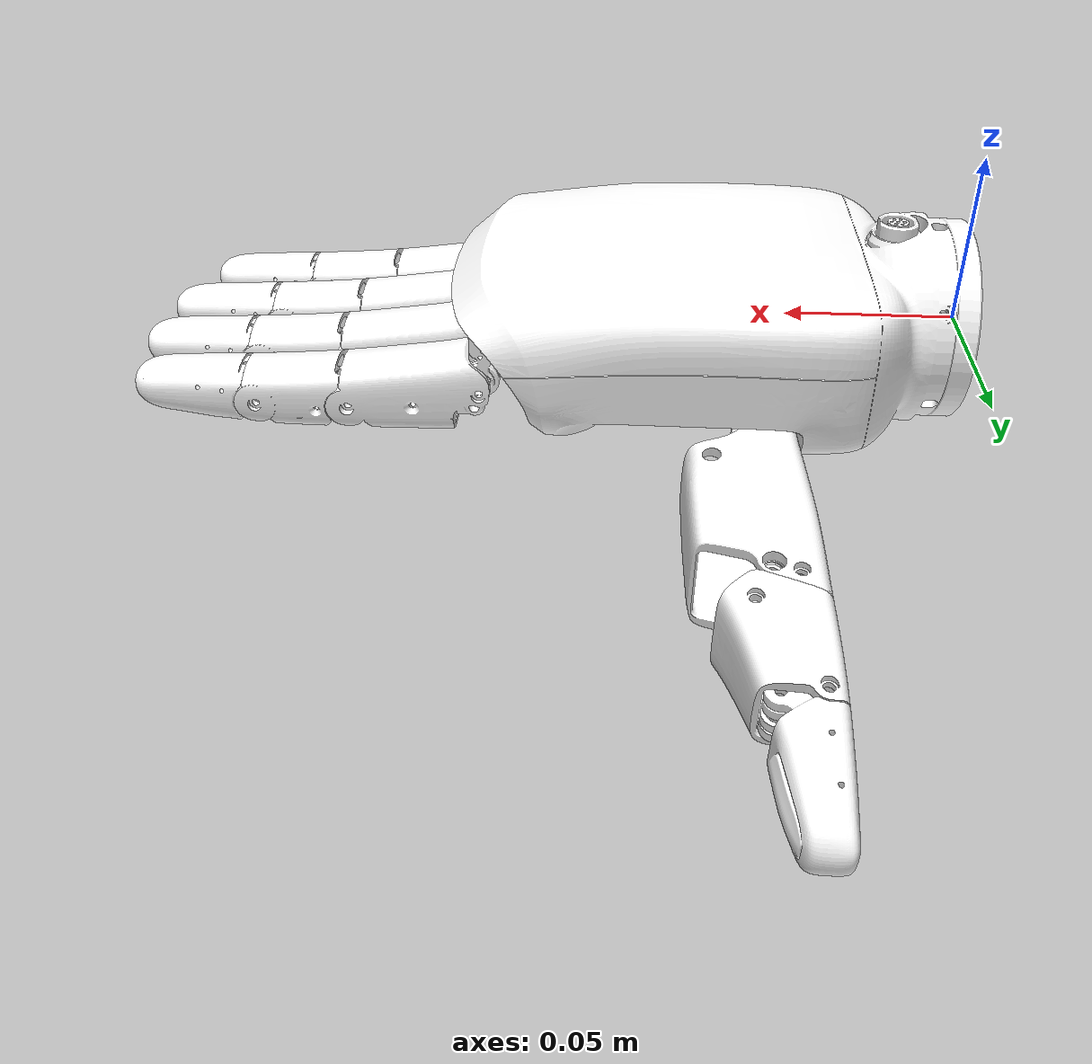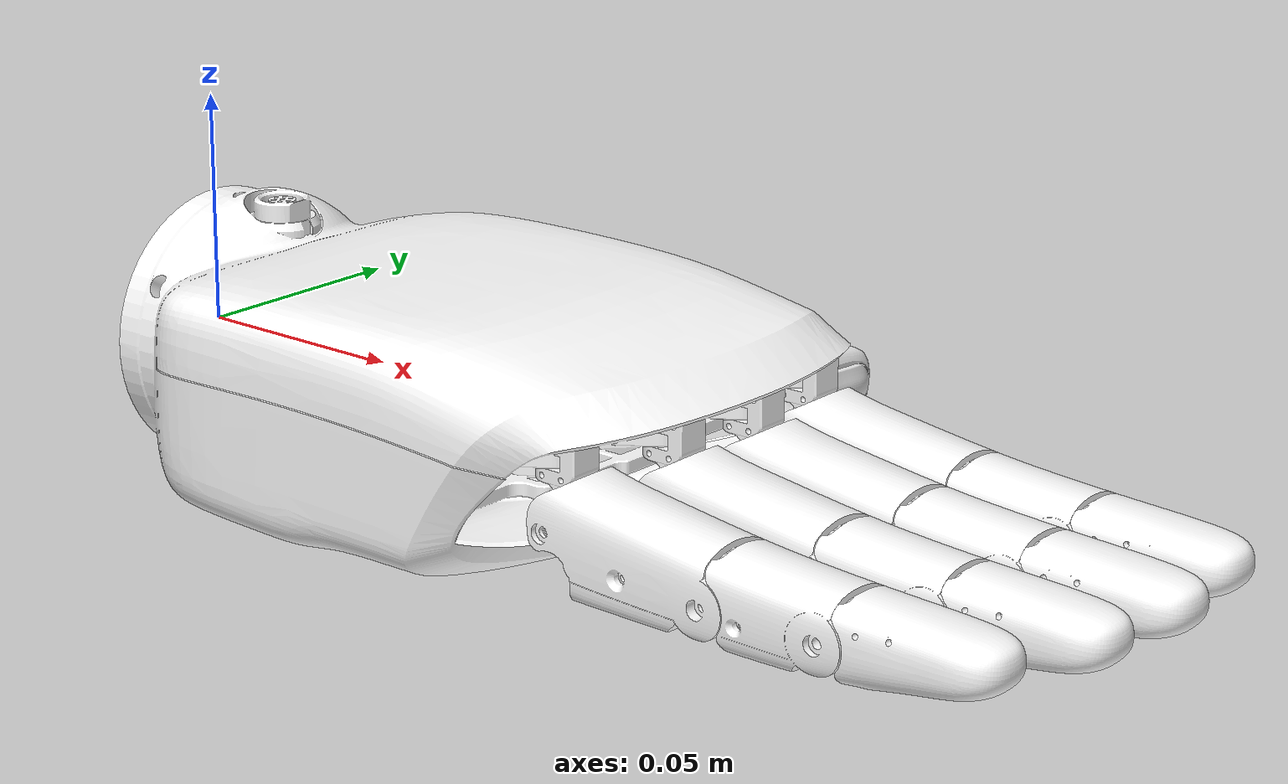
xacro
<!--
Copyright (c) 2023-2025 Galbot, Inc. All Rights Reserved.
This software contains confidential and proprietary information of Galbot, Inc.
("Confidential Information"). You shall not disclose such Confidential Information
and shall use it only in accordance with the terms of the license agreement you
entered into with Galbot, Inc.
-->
<?xml version="1.0"?>

<robot name="test_hand" xmlns:xacro="http://ros.org/wiki/xacro">
    <!-- Include-->
    <xacro:include filename="$(find galbot_one_charlie_description)/xacro/hand/galbot_hand2/galbot_right_hand2.xacro" />
    <!-- Properties -->
    <xacro:property name="M_PI" value="3.1415926535897931" />
    <!-- Parent link -->
    <link name="base_link" />
    <xacro:galbot_right_hand2 parent="base_link">
        <origin xyz="0 0 0" rpy="0 0 0" />
    </xacro:galbot_right_hand2>
</robot>

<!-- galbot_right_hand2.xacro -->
<robot xmlns:xacro="http://www.ros.org/wiki/xacro" name="galbot_right_hand2">
  <xacro:macro name="inertial_matrix" params="mass">
    <inertial>
      <mass value="${mass}"/>
      <inertia ixx="1.0" ixy="0.0" ixz="0.0" iyy="0.5" iyz="0.0" izz="1.0"/>
    </inertial>
  </xacro:macro>
  <xacro:macro name="Box_inertial_matrix" params="m l w h">
    <inertial>
      <mass value="${m}"/>
      <inertia ixx="${m*(h*h + l*l)/12}" ixy="0" ixz="0" iyy="${m*(w*w + l*l)/12}" iyz="0" izz="${m*(w*w + h*h)/12}"/>
    </inertial>
  </xacro:macro>

  <xacro:macro name="galbot_right_hand2" params="parent *origin name:=galbot_hand2">
    <xacro:property name="M_PI" value="3.1415926535897931"/>
    <xacro:property name="J2_LIMIT" value="1.38"/>

    <joint name="${name}_joint" type="fixed">
      <xacro:insert_block name="origin"/>
      <parent link="${parent}"/>
      <child link="${name}_base_link"/>
    </joint>
    <link name="${name}_base_link">
      <inertial>
        <origin xyz="0.00669319274439873 0.0647079257607944 0.000216061632806827" rpy="0 0 0"/>
        <mass value="0.115777795062524"/>
        <inertia ixx="2.64174784412012E-05" ixy="-6.62394936363998E-07" ixz="8.57925508460399E-14" iyy="6.82085516622814E-06" iyz="1.87067654060068E-13" izz="2.97840007308689E-05"/>
      </inertial>
      <visual>
        <origin xyz="0 0 0" rpy="0 0 0"/>
        <geometry>
          <mesh filename="package://galbot_one_charlie_description/meshes/galbot_hand2/right_base_link.stl"/>
        </geometry>
        <material name="">
          <color rgba="1 1 1 1"/>
        </material>
      </visual>
      <collision>
        <origin xyz="0 0 0" rpy="0 0 0"/>
        <geometry>
          <mesh filename="package://galbot_one_charlie_description/meshes/galbot_hand2/right_base_link.stl"/>
        </geometry>
      </collision>
    </link>
    <link name="${name}_finger1_link1">
      <inertial>
        <origin xyz="0.00785830866195667 0.00132081031717753 -0.00170040097920679" rpy="0 0 0"/>
        <mass value="0.00153891624842907"/>
        <inertia ixx="3.96940950225938E-08" ixy="-2.25615932256004E-09" ixz="1.11534413163152E-08" iyy="7.00016180608449E-08" iyz="6.3138315664902E-10" izz="5.73024207365218E-08"/>
      </inertial>
      <visual>
        <origin xyz="0 0 0" rpy="0 0 0"/>
        <geometry>
          <mesh filename="package://galbot_one_charlie_description/meshes/galbot_hand2/right_finger1_link1.stl"/>
        </geometry>
        <material name="">
          <color rgba="1 1 1 1"/>
        </material>
      </visual>
      <collision>
        <origin xyz="0 0 0" rpy="0 0 0"/>
        <geometry>
          <mesh filename="package://galbot_one_charlie_description/meshes/galbot_hand2/right_finger1_link1.stl"/>
        </geometry>
      </collision>
    </link>
    <joint name="${name}_finger1_joint1" type="revolute">
      <origin xyz="0.0555 0.028 -0.017993" rpy="-1.5707963267949 0 1.5707963267949"/>
      <parent link="${name}_base_link"/>
      <child link="${name}_finger1_link1"/>
      <axis xyz="0 0 1"/>
      <limit lower="0" upper="1.4454124" effort="10" velocity="1.5"/>
    </joint>
    <link name="${name}_finger1_link2">
      <inertial>
        <origin xyz="0.0296825612273398 0.00637937974701193 8.90537326866947E-09" rpy="0 0 0"/>
        <mass value="0.00724797542493922"/>
        <inertia ixx="4.72588105145482E-07" ixy="7.05434272668672E-08" ixz="9.96527959923987E-14" iyy="1.35886058006843E-06" iyz="8.12618795918479E-14" izz="1.81818544514032E-06"/>
      </inertial>
      <visual>
        <origin xyz="0 0 0" rpy="0 0 0"/>
        <geometry>
          <mesh filename="package://galbot_one_charlie_description/meshes/galbot_hand2/right_finger1_link2.stl"/>
        </geometry>
        <material name="">
          <color rgba="1 1 1 1"/>
        </material>
      </visual>
      <collision>
        <origin xyz="0 0 0" rpy="0 0 0"/>
        <geometry>
          <mesh filename="package://galbot_one_charlie_description/meshes/galbot_hand2/right_finger1_link2.stl"/>
        </geometry>
      </collision>
    </link>
    <joint name="${name}_finger1_joint2" type="revolute">
      <origin xyz="0.014916 0.0090836 0.0007" rpy="-1.5708 0 0.13459"/>
      <parent link="${name}_finger1_link1"/>
      <child link="${name}_finger1_link2"/>
      <axis xyz="0 0 1"/>
      <limit lower="0" upper="1.1961649" effort="10" velocity="1.5"/>
    </joint>
    <link name="${name}_finger1_link3">
      <inertial>
        <origin xyz="0.0171434294263292 -0.00150490209491063 -3.38537161810593E-08" rpy="0 0 0"/>
        <mass value="0.00474795156463927"/>
        <inertia ixx="2.72339576566397E-07" ixy="9.31860669227148E-08" ixz="-1.87102796887988E-13" iyy="3.73288382584687E-07" iyz="2.29890430897199E-13" izz="6.22246992957631E-07"/>
      </inertial>
      <visual>
        <origin xyz="0 0 0" rpy="0 0 0"/>
        <geometry>
          <mesh filename="package://galbot_one_charlie_description/meshes/galbot_hand2/right_finger1_link3.stl"/>
        </geometry>
        <material name="">
          <color rgba="1 1 1 1"/>
        </material>
      </visual>
      <collision>
        <origin xyz="0 0 0" rpy="0 0 0"/>
        <geometry>
          <mesh filename="package://galbot_one_charlie_description/meshes/galbot_hand2/right_finger1_link3.stl"/>
        </geometry>
      </collision>
    </link>
    <joint name="${name}_finger1_joint3" type="revolute">
      <origin xyz="0.050801 0.0048501 0" rpy="0 0 0"/>
      <parent link="${name}_finger1_link2"/>
      <child link="${name}_finger1_link3"/>
      <axis xyz="0 0 1"/>
      <limit lower="0" upper="0.9287205" effort="10" velocity="1.5"/>
    </joint>
    <link name="${name}_finger1_link4">
      <inertial>
        <origin xyz="0.0154993886357015 0.00400208117160733 2.96682781129876E-06" rpy="0 0 0"/>
        <mass value="0.00507769043716497"/>
        <inertia ixx="1.26734726260522E-07" ixy="5.68384060207815E-08" ixz="-7.35166813447687E-11" iyy="4.08272576068573E-07" iyz="2.94063379928566E-11" izz="3.49536439928651E-07"/>
      </inertial>
      <visual>
        <origin xyz="0 0 0" rpy="0 0 0"/>
        <geometry>
          <mesh filename="package://galbot_one_charlie_description/meshes/galbot_hand2/right_finger1_link4.stl"/>
        </geometry>
        <material name="">
          <color rgba="1 1 1 1"/>
        </material>
      </visual>
      <collision>
        <origin xyz="0 0 0" rpy="0 0 0"/>
        <geometry>
          <mesh filename="package://galbot_one_charlie_description/meshes/galbot_hand2/right_finger1_link4.stl"/>
        </geometry>
      </collision>
    </link>
    <joint name="${name}_finger1_joint4" type="revolute">
      <origin xyz="0.033461 -0.010517 0" rpy="0 0 0"/>
      <parent link="${name}_finger1_link3"/>
      <child link="${name}_finger1_link4"/>
      <axis xyz="0 0 1"/>
      <limit lower="0" upper="0.5928541" effort="10" velocity="1.5"/>
    </joint>
    <link name="${name}_finger1_end_effector_link"/>
    <joint name="${name}_finger1_end_effector_joint" type="fixed">
      <origin xyz="0.023898 0.012205 0" rpy="0 0 -0.1663"/>
      <parent link="${name}_finger1_link4"/>
      <child link="${name}_finger1_end_effector_link"/>
      <axis xyz="0 0 0"/>
    </joint>
    <link name="${name}_finger2_link1">
      <inertial>
        <origin xyz="0.00382575221148437 -5.00520139917748E-09 -0.00379970728509156" rpy="0 0 0"/>
        <mass value="0.000889473582525137"/>
        <inertia ixx="4.0055788387694E-08" ixy="-1.56454747092938E-14" ixz="-4.38944911232398E-09" iyy="4.42763145564233E-08" iyz="-1.56506551225603E-14" izz="1.19540185771033E-08"/>
      </inertial>
      <visual>
        <origin xyz="0 0 0" rpy="0 0 0"/>
        <geometry>
          <mesh filename="package://galbot_one_charlie_description/meshes/galbot_hand2/right_finger2_link1.stl"/>
        </geometry>
        <material name="">
          <color rgba="1 1 1 1"/>
        </material>
      </visual>
      <collision>
        <origin xyz="0 0 0" rpy="0 0 0"/>
        <geometry>
          <mesh filename="package://galbot_one_charlie_description/meshes/galbot_hand2/right_finger2_link1.stl"/>
        </geometry>
      </collision>
    </link>
    <joint name="${name}_finger2_joint1" type="revolute">
      <origin xyz="0.1333 0.0339 -0.0010932" rpy="3.14159265358979 0 0"/>
      <parent link="${name}_base_link"/>
      <child link="${name}_finger2_link1"/>
      <axis xyz="0 0 1"/>
      <limit lower="-0.34906585" upper="0.34906585" effort="10" velocity="1.5"/>
    </joint>
    <link name="${name}_finger2_link2">
      <inertial>
        <origin xyz="0.0199166121070694 0.00452784516743088 -0.000303877808472956" rpy="0 0 0"/>
        <mass value="0.00346834967811122"/>
        <inertia ixx="7.47882545674778E-08" ixy="-6.37999082906235E-08" ixz="-8.29444375307048E-09" iyy="6.28681619362609E-07" iyz="-4.51118940783356E-10" izz="6.89244310692068E-07"/>
      </inertial>
      <visual>
        <origin xyz="0 0 0" rpy="0 0 0"/>
        <geometry>
          <mesh filename="package://galbot_one_charlie_description/meshes/galbot_hand2/right_finger2_link2.stl"/>
        </geometry>
        <material name="">
          <color rgba="1 1 1 1"/>
        </material>
      </visual>
      <collision>
        <origin xyz="0 0 0" rpy="0 0 0"/>
        <geometry>
          <mesh filename="package://galbot_one_charlie_description/meshes/galbot_hand2/right_finger2_link2.stl"/>
        </geometry>
      </collision>
    </link>
    <joint name="${name}_finger2_joint2" type="revolute">
      <origin xyz="0.0051 0 0.0044" rpy="1.5708 0 0"/>
      <parent link="${name}_finger2_link1"/>
      <child link="${name}_finger2_link2"/>
      <axis xyz="0 0 1"/>
      <limit lower="0" upper="${J2_LIMIT}" effort="10" velocity="1.5"/>
    </joint>
    <link name="${name}_finger2_link3">
      <inertial>
        <origin xyz="0.0131841948791407 0.000998392629334753 -4.43775828881318E-05" rpy="0 0 0"/>
        <mass value="0.0024033066914253"/>
        <inertia ixx="9.21336766794171E-08" ixy="-6.73938389627146E-09" ixz="9.1749183458728E-09" iyy="2.61350743499042E-07" iyz="3.14135392902418E-09" izz="2.21858731660162E-07"/>
      </inertial>
      <visual>
        <origin xyz="0 0 0" rpy="0 0 0"/>
        <geometry>
          <mesh filename="package://galbot_one_charlie_description/meshes/galbot_hand2/right_finger2_link3.stl"/>
        </geometry>
        <material name="">
          <color rgba="1 1 1 1"/>
        </material>
      </visual>
      <collision>
        <origin xyz="0 0 0" rpy="0 0 0"/>
        <geometry>
          <mesh filename="package://galbot_one_charlie_description/meshes/galbot_hand2/right_finger2_link3.stl"/>
        </geometry>
      </collision>
    </link>
    <joint name="${name}_finger2_joint3" type="revolute">
      <origin xyz="0.0377 0.0057104 0" rpy="0 0 0"/>
      <parent link="${name}_finger2_link2"/>
      <child link="${name}_finger2_link3"/>
      <axis xyz="0 0 1"/>
      <limit lower="0" upper="${1.021*J2_LIMIT}" effort="10" velocity="1.5"/>
    </joint>
    <link name="${name}_finger2_link4">
      <inertial>
        <origin xyz="0.0164013380865539 -0.000465187190866685 2.14248312126186E-06" rpy="0 0 0"/>
        <mass value="0.00413805450374487"/>
        <inertia ixx="1.20869219589554E-07" ixy="4.29725372551645E-08" ixz="8.81359189277611E-10" iyy="3.17049521027888E-07" iyz="-4.42801512142374E-10" izz="2.55560236671059E-07"/>
      </inertial>
      <visual>
        <origin xyz="0 0 0" rpy="0 0 0"/>
        <geometry>
          <mesh filename="package://galbot_one_charlie_description/meshes/galbot_hand2/right_finger2_link4.stl"/>
        </geometry>
        <material name="">
          <color rgba="1 1 1 1"/>
        </material>
      </visual>
      <collision>
        <origin xyz="0 0 0" rpy="0 0 0"/>
        <geometry>
          <mesh filename="package://galbot_one_charlie_description/meshes/galbot_hand2/right_finger2_link4.stl"/>
        </geometry>
      </collision>
    </link>
    <joint name="${name}_finger2_joint4" type="revolute">
      <origin xyz="0.0265 0 0" rpy="0 0 0"/>
      <parent link="${name}_finger2_link3"/>
      <child link="${name}_finger2_link4"/>
      <axis xyz="0 0 1"/>
      <limit lower="0" upper="${0.857*1.021*J2_LIMIT}" effort="10" velocity="1.5"/>
    </joint>
    <link name="${name}_finger2_end_effector_link"/>
    <joint name="${name}_finger2_end_effector_joint" type="fixed">
      <origin xyz="0.021611 0.0063638 0" rpy="0 0 -0.12217"/>
      <parent link="${name}_finger2_link4"/>
      <child link="${name}_finger2_end_effector_link"/>
      <axis xyz="0 0 0"/>
    </joint>

    <link name="${name}_finger3_link1">
      <inertial>
        <origin xyz="0.00382575221148439 -5.00520138009553E-09 -0.00379970728509157" rpy="0 0 0"/>
        <mass value="0.000889473582525137"/>
        <inertia ixx="4.00557883876939E-08" ixy="-1.56454747119987E-14" ixz="-4.389449112324E-09" iyy="4.42763145564233E-08" iyz="-1.56506551400994E-14" izz="1.19540185771032E-08"/>
      </inertial>
      <visual>
        <origin xyz="0 0 0" rpy="0 0 0"/>
        <geometry>
          <mesh filename="package://galbot_one_charlie_description/meshes/galbot_hand2/right_finger3_link1.stl"/>
        </geometry>
        <material name="">
          <color rgba="1 1 1 1"/>
        </material>
      </visual>
      <collision>
        <origin xyz="0 0 0" rpy="0 0 0"/>
        <geometry>
          <mesh filename="package://galbot_one_charlie_description/meshes/galbot_hand2/right_finger3_link1.stl"/>
        </geometry>
      </collision>
    </link>
    <joint name="${name}_finger3_joint1" type="revolute">
      <origin xyz="0.1373 0.0113 -0.0010932" rpy="3.14159265358979 0 0"/>
      <parent link="${name}_base_link"/>
      <child link="${name}_finger3_link1"/>
      <axis xyz="0 0 1"/>
      <limit lower="-0.34906585" upper="0.34906585" effort="10" velocity="1.5"/>
    </joint>
    <link name="${name}_finger3_link2">
      <inertial>
        <origin xyz="0.0199166121070694 0.00452784516743091 -0.000303877808472977" rpy="0 0 0"/>
        <mass value="0.00346834967811122"/>
        <inertia ixx="7.47882545674527E-08" ixy="-6.37999082906228E-08" ixz="-8.29444375307045E-09" iyy="6.28681619362609E-07" iyz="-4.51118940783307E-10" izz="6.89244310692043E-07"/>
      </inertial>
      <visual>
        <origin xyz="0 0 0" rpy="0 0 0"/>
        <geometry>
          <mesh filename="package://galbot_one_charlie_description/meshes/galbot_hand2/right_finger3_link2.stl"/>
        </geometry>
        <material name="">
          <color rgba="1 1 1 1"/>
        </material>
      </visual>
      <collision>
        <origin xyz="0 0 0" rpy="0 0 0"/>
        <geometry>
          <mesh filename="package://galbot_one_charlie_description/meshes/galbot_hand2/right_finger3_link2.stl"/>
        </geometry>
      </collision>
    </link>
    <joint name="${name}_finger3_joint2" type="revolute">
      <origin xyz="0.0051 0 0.0044" rpy="1.5708 0 0"/>
      <parent link="${name}_finger3_link1"/>
      <child link="${name}_finger3_link2"/>
      <axis xyz="0 0 1"/>
      <limit lower="0" upper="${J2_LIMIT}" effort="10" velocity="1.5"/>
    </joint>
    <link name="${name}_finger3_link3">
      <inertial>
        <origin xyz="0.0131841948791407 0.000998392629334779 -4.43775828881474E-05" rpy="0 0 0"/>
        <mass value="0.00240330669142528"/>
        <inertia ixx="9.21336766794013E-08" ixy="-6.73938389627144E-09" ixz="9.17491834587276E-09" iyy="2.61350743499041E-07" iyz="3.14135392902408E-09" izz="2.21858731660145E-07"/>
      </inertial>
      <visual>
        <origin xyz="0 0 0" rpy="0 0 0"/>
        <geometry>
          <mesh filename="package://galbot_one_charlie_description/meshes/galbot_hand2/right_finger3_link3.stl"/>
        </geometry>
        <material name="">
          <color rgba="1 1 1 1"/>
        </material>
      </visual>
      <collision>
        <origin xyz="0 0 0" rpy="0 0 0"/>
        <geometry>
          <mesh filename="package://galbot_one_charlie_description/meshes/galbot_hand2/right_finger3_link3.stl"/>
        </geometry>
      </collision>
    </link>
    <joint name="${name}_finger3_joint3" type="revolute">
      <origin xyz="0.0377 0.0057104 0" rpy="0 0 0"/>
      <parent link="${name}_finger3_link2"/>
      <child link="${name}_finger3_link3"/>
      <axis xyz="0 0 1"/>
      <limit lower="0" upper="${1.021*J2_LIMIT}" effort="10" velocity="1.5"/>
    </joint>
    <link name="${name}_finger3_link4">
      <inertial>
        <origin xyz="0.0164013380865539 -0.000465187190866657 2.14248312124625E-06" rpy="0 0 0"/>
        <mass value="0.00413805450374486"/>
        <inertia ixx="1.20869219589559E-07" ixy="4.29725372551635E-08" ixz="8.81359189277604E-10" iyy="3.17049521027887E-07" iyz="-4.42801512142455E-10" izz="2.55560236671063E-07"/>
      </inertial>
      <visual>
        <origin xyz="0 0 0" rpy="0 0 0"/>
        <geometry>
          <mesh filename="package://galbot_one_charlie_description/meshes/galbot_hand2/right_finger3_link4.stl"/>
        </geometry>
        <material name="">
          <color rgba="1 1 1 1"/>
        </material>
      </visual>
      <collision>
        <origin xyz="0 0 0" rpy="0 0 0"/>
        <geometry>
          <mesh filename="package://galbot_one_charlie_description/meshes/galbot_hand2/right_finger3_link4.stl"/>
        </geometry>
      </collision>
    </link>
    <joint name="${name}_finger3_joint4" type="revolute">
      <origin xyz="0.0265 0 0" rpy="0 0 0"/>
      <parent link="${name}_finger3_link3"/>
      <child link="${name}_finger3_link4"/>
      <axis xyz="0 0 1"/>
      <limit lower="0" upper="${0.857*1.021*J2_LIMIT}" effort="10" velocity="1.5"/>
    </joint>
    <link name="${name}_finger3_end_effector_link"/>
    <joint name="${name}_finger3_end_effector_joint" type="fixed">
      <origin xyz="0.021611 0.0063638 0" rpy="0 0 -0.12217"/>
      <parent link="${name}_finger3_link4"/>
      <child link="${name}_finger3_end_effector_link"/>
      <axis xyz="0 0 0"/>
    </joint>

    <link name="${name}_finger4_link1">
      <inertial>
        <origin xyz="0.00382575221148436 -5.00520139223859E-09 -0.00379970728509158" rpy="0 0 0"/>
        <mass value="0.000889473582525136"/>
        <inertia ixx="4.00557883876939E-08" ixy="-1.5645474711456E-14" ixz="-4.389449112324E-09" iyy="4.42763145564233E-08" iyz="-1.56506551307135E-14" izz="1.19540185771033E-08"/>
      </inertial>
      <visual>
        <origin xyz="0 0 0" rpy="0 0 0"/>
        <geometry>
          <mesh filename="package://galbot_one_charlie_description/meshes/galbot_hand2/right_finger4_link1.stl"/>
        </geometry>
        <material name="">
          <color rgba="1 1 1 1"/>
        </material>
      </visual>
      <collision>
        <origin xyz="0 0 0" rpy="0 0 0"/>
        <geometry>
          <mesh filename="package://galbot_one_charlie_description/meshes/galbot_hand2/right_finger4_link1.stl"/>
        </geometry>
      </collision>
    </link>
    <joint name="${name}_finger4_joint1" type="revolute">
      <origin xyz="0.1358 -0.0113 -0.0010932" rpy="3.14159265358979 0 0"/>
      <parent link="${name}_base_link"/>
      <child link="${name}_finger4_link1"/>
      <axis xyz="0 0 1"/>
      <limit lower="-0.34906585" upper="0.34906585" effort="10" velocity="1.5"/>
    </joint>
    <link name="${name}_finger4_link2">
      <inertial>
        <origin xyz="0.0199166121070693 0.00452784516743089 -0.000303877808472974" rpy="0 0 0"/>
        <mass value="0.00346834967811122"/>
        <inertia ixx="7.47882545674251E-08" ixy="-6.37999082906559E-08" ixz="-8.29444375306938E-09" iyy="6.28681619362607E-07" iyz="-4.51118940783663E-10" izz="6.89244310692013E-07"/>
      </inertial>
      <visual>
        <origin xyz="0 0 0" rpy="0 0 0"/>
        <geometry>
          <mesh filename="package://galbot_one_charlie_description/meshes/galbot_hand2/right_finger4_link2.stl"/>
        </geometry>
        <material name="">
          <color rgba="1 1 1 1"/>
        </material>
      </visual>
      <collision>
        <origin xyz="0 0 0" rpy="0 0 0"/>
        <geometry>
          <mesh filename="package://galbot_one_charlie_description/meshes/galbot_hand2/right_finger4_link2.stl"/>
        </geometry>
      </collision>
    </link>
    <joint name="${name}_finger4_joint2" type="revolute">
      <origin xyz="0.0051 0 0.0044" rpy="1.5708 0 0"/>
      <parent link="${name}_finger4_link1"/>
      <child link="${name}_finger4_link2"/>
      <axis xyz="0 0 1"/>
      <limit lower="0" upper="${J2_LIMIT}" effort="10" velocity="1.5"/>
    </joint>
    <link name="${name}_finger4_link3">
      <inertial>
        <origin xyz="0.0131841948791406 0.00099839262933478 -4.43775828881492E-05" rpy="0 0 0"/>
        <mass value="0.00240330669142529"/>
        <inertia ixx="9.21336766794016E-08" ixy="-6.73938389627171E-09" ixz="9.17491834587272E-09" iyy="2.61350743499041E-07" iyz="3.14135392902422E-09" izz="2.21858731660146E-07"/>
      </inertial>
      <visual>
        <origin xyz="0 0 0" rpy="0 0 0"/>
        <geometry>
          <mesh filename="package://galbot_one_charlie_description/meshes/galbot_hand2/right_finger4_link3.stl"/>
        </geometry>
        <material name="">
          <color rgba="1 1 1 1"/>
        </material>
      </visual>
      <collision>
        <origin xyz="0 0 0" rpy="0 0 0"/>
        <geometry>
          <mesh filename="package://galbot_one_charlie_description/meshes/galbot_hand2/right_finger4_link3.stl"/>
        </geometry>
      </collision>
    </link>
    <joint name="${name}_finger4_joint3" type="revolute">
      <origin xyz="0.0377 0.0057104 0" rpy="0 0 0"/>
      <parent link="${name}_finger4_link2"/>
      <child link="${name}_finger4_link3"/>
      <axis xyz="0 0 1"/>
      <limit lower="0" upper="${1.021*J2_LIMIT}" effort="10" velocity="1.5"/>
    </joint>
    <link name="${name}_finger4_link4">
      <inertial>
        <origin xyz="0.0164013380865539 -0.00046518719086673 2.14248312125319E-06" rpy="0 0 0"/>
        <mass value="0.00413805450374487"/>
        <inertia ixx="1.20869219589552E-07" ixy="4.29725372551659E-08" ixz="8.81359189277507E-10" iyy="3.17049521027888E-07" iyz="-4.42801512142327E-10" izz="2.55560236671057E-07"/>
      </inertial>
      <visual>
        <origin xyz="0 0 0" rpy="0 0 0"/>
        <geometry>
          <mesh filename="package://galbot_one_charlie_description/meshes/galbot_hand2/right_finger4_link4.stl"/>
        </geometry>
        <material name="">
          <color rgba="1 1 1 1"/>
        </material>
      </visual>
      <collision>
        <origin xyz="0 0 0" rpy="0 0 0"/>
        <geometry>
          <mesh filename="package://galbot_one_charlie_description/meshes/galbot_hand2/right_finger4_link4.stl"/>
        </geometry>
      </collision>
    </link>
    <joint name="${name}_finger4_joint4" type="revolute">
      <origin xyz="0.0265 0 0" rpy="0 0 0"/>
      <parent link="${name}_finger4_link3"/>
      <child link="${name}_finger4_link4"/>
      <axis xyz="0 0 1"/>
      <limit lower="0" upper="${0.857*1.021*J2_LIMIT}" effort="10" velocity="1.5"/>
    </joint>
    <link name="${name}_finger4_end_effector_link"/>
    <joint name="${name}_finger4_end_effector_joint" type="fixed">
      <origin xyz="0.021611 0.0063638 0" rpy="0 0 -0.12217"/>
      <parent link="${name}_finger4_link4"/>
      <child link="${name}_finger4_end_effector_link"/>
      <axis xyz="0 0 0"/>
    </joint>

    <link name="${name}_finger5_link1">
      <inertial>
        <origin xyz="0.00382575221148435 -5.00520141305527E-09 -0.00379970728509157" rpy="0 0 0"/>
        <mass value="0.000889473582525137"/>
        <inertia ixx="4.00557883876941E-08" ixy="-1.56454747049389E-14" ixz="-4.389449112324E-09" iyy="4.42763145564233E-08" iyz="-1.56506551150176E-14" izz="1.19540185771034E-08"/>
      </inertial>
      <visual>
        <origin xyz="0 0 0" rpy="0 0 0"/>
        <geometry>
          <mesh filename="package://galbot_one_charlie_description/meshes/galbot_hand2/right_finger5_link1.stl"/>
        </geometry>
        <material name="">
          <color rgba="1 1 1 1"/>
        </material>
      </visual>
      <collision>
        <origin xyz="0 0 0" rpy="0 0 0"/>
        <geometry>
          <mesh filename="package://galbot_one_charlie_description/meshes/galbot_hand2/right_finger5_link1.stl"/>
        </geometry>
      </collision>
    </link>
    <joint name="${name}_finger5_joint1" type="revolute">
      <origin xyz="0.1283 -0.0338999999999999 -0.00109315386890013" rpy="3.14159265358979 0 0"/>
      <parent link="${name}_base_link"/>
      <child link="${name}_finger5_link1"/>
      <axis xyz="0 0 1"/>
      <limit lower="-0.34906585" upper="0.34906585" effort="10" velocity="1.5"/>
    </joint>
    <link name="${name}_finger5_link2">
      <inertial>
        <origin xyz="0.0199166121070693 0.00452784516743085 -0.000303877808472956" rpy="0 0 0"/>
        <mass value="0.00346834967811122"/>
        <inertia ixx="7.47882545675031E-08" ixy="-6.37999082906573E-08" ixz="-8.29444375306939E-09" iyy="6.28681619362609E-07" iyz="-4.51118940783567E-10" izz="6.89244310692093E-07"/>
      </inertial>
      <visual>
        <origin xyz="0 0 0" rpy="0 0 0"/>
        <geometry>
          <mesh filename="package://galbot_one_charlie_description/meshes/galbot_hand2/right_finger5_link2.stl"/>
        </geometry>
        <material name="">
          <color rgba="1 1 1 1"/>
        </material>
      </visual>
      <collision>
        <origin xyz="0 0 0" rpy="0 0 0"/>
        <geometry>
          <mesh filename="package://galbot_one_charlie_description/meshes/galbot_hand2/right_finger5_link2.stl"/>
        </geometry>
      </collision>
    </link>
    <joint name="${name}_finger5_joint2" type="revolute">
      <origin xyz="0.0051 0 0.0044" rpy="1.5708 0 0"/>
      <parent link="${name}_finger5_link1"/>
      <child link="${name}_finger5_link2"/>
      <axis xyz="0 0 1"/>
      <limit lower="0" upper="${J2_LIMIT}" effort="10" velocity="1.5"/>
    </joint>
    <link name="${name}_finger5_link3">
      <inertial>
        <origin xyz="0.0131841948791407 0.000998392629334792 -4.43775828881179E-05" rpy="0 0 0"/>
        <mass value="0.00240330669142528"/>
        <inertia ixx="9.21336766793983E-08" ixy="-6.73938389627147E-09" ixz="9.17491834587271E-09" iyy="2.61350743499041E-07" iyz="3.14135392902411E-09" izz="2.21858731660142E-07"/>
      </inertial>
      <visual>
        <origin xyz="0 0 0" rpy="0 0 0"/>
        <geometry>
          <mesh filename="package://galbot_one_charlie_description/meshes/galbot_hand2/right_finger5_link3.stl"/>
        </geometry>
        <material name="">
          <color rgba="1 1 1 1"/>
        </material>
      </visual>
      <collision>
        <origin xyz="0 0 0" rpy="0 0 0"/>
        <geometry>
          <mesh filename="package://galbot_one_charlie_description/meshes/galbot_hand2/right_finger5_link3.stl"/>
        </geometry>
      </collision>
    </link>
    <joint name="${name}_finger5_joint3" type="revolute">
      <origin xyz="0.0377 0.0057104 0" rpy="0 0 0"/>
      <parent link="${name}_finger5_link2"/>
      <child link="${name}_finger5_link3"/>
      <axis xyz="0 0 1"/>
      <limit lower="0" upper="${1.021*J2_LIMIT}" effort="10" velocity="1.5"/>
    </joint>
    <link name="${name}_finger5_link4">
      <inertial>
        <origin xyz="0.016401338086554 -0.000465187190866656 2.1424831212688E-06" rpy="0 0 0"/>
        <mass value="0.00413805450374488"/>
        <inertia ixx="1.20869219589565E-07" ixy="4.29725372551634E-08" ixz="8.81359189277933E-10" iyy="3.17049521027888E-07" iyz="-4.42801512142623E-10" izz="2.5556023667107E-07"/>
      </inertial>
      <visual>
        <origin xyz="0 0 0" rpy="0 0 0"/>
        <geometry>
          <mesh filename="package://galbot_one_charlie_description/meshes/galbot_hand2/right_finger5_link4.stl"/>
        </geometry>
        <material name="">
          <color rgba="1 1 1 1"/>
        </material>
      </visual>
      <collision>
        <origin xyz="0 0 0" rpy="0 0 0"/>
        <geometry>
          <mesh filename="package://galbot_one_charlie_description/meshes/galbot_hand2/right_finger5_link4.stl"/>
        </geometry>
      </collision>
    </link>
    <joint name="${name}_finger5_joint4" type="revolute">
      <origin xyz="0.0265 0 0" rpy="0 0 0"/>
      <parent link="${name}_finger5_link3"/>
      <child link="${name}_finger5_link4"/>
      <axis xyz="0 0 1"/>
      <limit lower="0" upper="${0.857*1.021*J2_LIMIT}" effort="10" velocity="1.5"/>
    </joint>
    <link name="${name}_finger5_end_effector_link"/>
    <joint name="${name}_finger5_end_effector_joint" type="fixed">
      <origin xyz="0.021611 0.0063638 0" rpy="0 0 -0.12217"/>
      <parent link="${name}_finger5_link4"/>
      <child link="${name}_finger5_end_effector_link"/>
      <axis xyz="0 0 0"/>
    </joint>

  </xacro:macro>
</robot>
